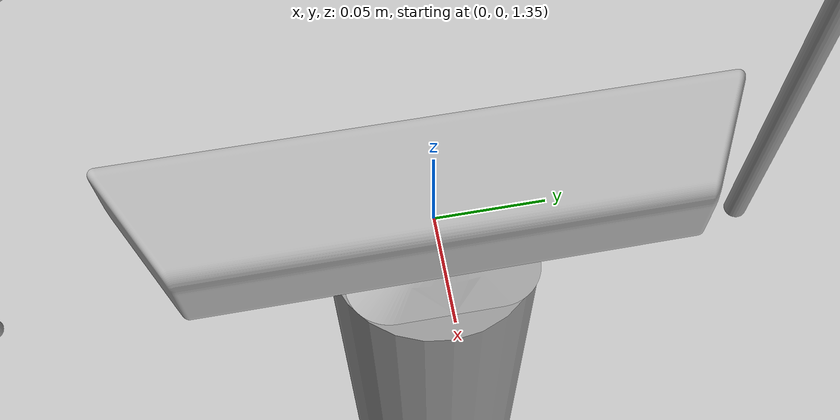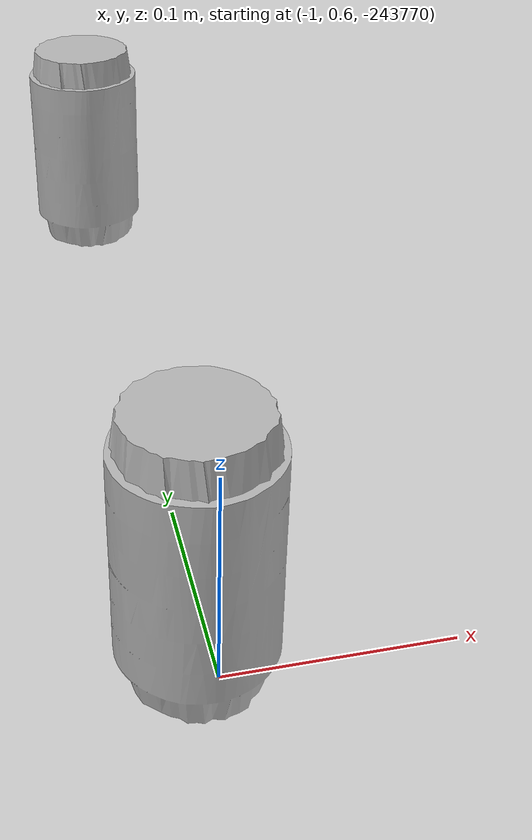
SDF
<sdf version="1.7">
 <world name="default">
  <light name="sun" type="directional">
   <pose>0 0 10 0 -0 0</pose>
   <diffuse>0.8 0.8 0.8 1</diffuse>
   <specular>0.2 0.2 0.2 1</specular>
   <attenuation>
    <range>1000</range>
    <constant>0.9</constant>
    <linear>0.01</linear>
    <quadratic>0.001</quadratic>
   </attenuation>
   <direction>-0.5 0.1 -0.9</direction>
   <spot><inner_angle>0</inner_angle><outer_angle>0</outer_angle><falloff>0</falloff></spot>
  </light>
  <gravity>0 0 -9.8</gravity>
  <magnetic_field>6e-06 2.3e-05 -4.2e-05</magnetic_field>
  <atmosphere type="adiabatic"/>
  <physics type="ode">
   <max_step_size>0.001</max_step_size>
   <real_time_factor>1</real_time_factor>
   <real_time_update_rate>1000</real_time_update_rate>
  </physics>
  <scene><ambient>0.4 0.4 0.4 1</ambient><background>0.7 0.7 0.7 1</background><shadows>1</shadows></scene>
  <spherical_coordinates>
   <surface_model>EARTH_WGS84</surface_model>
   <latitude_deg>0</latitude_deg>
   <longitude_deg>0</longitude_deg>
   <elevation>0</elevation>
   <heading_deg>0</heading_deg>
  </spherical_coordinates>
  <model name="table_clone">
   <static>1</static>
   <link name="link">
    <collision name="surface">
     <pose>0 0 1 0 -0 0</pose>
     <geometry><box><size>1.5 0.8 0.03</size></box></geometry>
     <surface><friction><ode><mu>0.6</mu><mu2>0.6</mu2></ode></friction></surface>
    </collision>
    <visual name="visual1">
     <pose>0 0 1 0 -0 0</pose>
     <geometry><box><size>1.5 0.8 0.03</size></box></geometry>
     <material>
      <script><uri>file://media/materials/scripts/gazebo.material</uri><name>Gazebo/Wood</name></script>
     </material>
    </visual>
    <collision name="front_left_leg">
     <pose>0.68 0.38 0.5 0 -0 0</pose>
     <geometry><cylinder><radius>0.02</radius><length>1</length></cylinder></geometry>
    </collision>
    <visual name="front_left_leg">
     <pose>0.68 0.38 0.5 0 -0 0</pose>
     <geometry><cylinder><radius>0.02</radius><length>1</length></cylinder></geometry>
     <material>
      <script><uri>file://media/materials/scripts/gazebo.material</uri><name>Gazebo/Grey</name></script>
     </material>
    </visual>
    <collision name="front_right_leg">
     <pose>0.68 -0.38 0.5 0 -0 0</pose>
     <geometry><cylinder><radius>0.02</radius><length>1</length></cylinder></geometry>
    </collision>
    <visual name="front_right_leg">
     <pose>0.68 -0.38 0.5 0 -0 0</pose>
     <geometry><cylinder><radius>0.02</radius><length>1</length></cylinder></geometry>
     <material>
      <script><uri>file://media/materials/scripts/gazebo.material</uri><name>Gazebo/Grey</name></script>
     </material>
    </visual>
    <collision name="back_right_leg">
     <pose>-0.68 -0.38 0.5 0 -0 0</pose>
     <geometry><cylinder><radius>0.02</radius><length>1</length></cylinder></geometry>
    </collision>
    <visual name="back_right_leg">
     <pose>-0.68 -0.38 0.5 0 -0 0</pose>
     <geometry><cylinder><radius>0.02</radius><length>1</length></cylinder></geometry>
     <material>
      <script><uri>file://media/materials/scripts/gazebo.material</uri><name>Gazebo/Grey</name></script>
     </material>
    </visual>
    <collision name="back_left_leg">
     <pose>-0.68 0.38 0.5 0 -0 0</pose>
     <geometry><cylinder><radius>0.02</radius><length>1</length></cylinder></geometry>
    </collision>
    <visual name="back_left_leg">
     <pose>-0.68 0.38 0.5 0 -0 0</pose>
     <geometry><cylinder><radius>0.02</radius><length>1</length></cylinder></geometry>
     <material>
      <script><uri>file://media/materials/scripts/gazebo.material</uri><name>Gazebo/Grey</name></script>
     </material>
    </visual>
   </link>
   <pose>-1 0 0 0 0 -1.57</pose>
  </model>
  <model name="coke_can">
   <link name="link">
    <inertial>
     <pose>0 0 0.06 0 -0 0</pose>
     <mass>0.39</mass>
     <inertia>
      <ixx>0.00055575</ixx>
      <ixy>0</ixy>
      <ixz>0</ixz>
      <iyy>0.00055575</iyy>
      <iyz>0</iyz>
      <izz>0.0001755</izz>
     </inertia>
    </inertial>
    <collision name="collision">
     <pose>0.003937 0.004724 -0.18 0 -0 0</pose>
     <geometry><mesh><uri>model://coke_can/meshes/coke_can.dae</uri></mesh></geometry>
     <surface>
      <friction><ode><mu>1</mu><mu2>1</mu2></ode></friction>
      <contact><ode><kp>1e+07</kp><kd>1</kd><min_depth>0.001</min_depth><max_vel>0.1</max_vel></ode></contact>
     </surface>
    </collision>
    <visual name="visual">
     <pose>0.003937 0.004724 -0.18 0 -0 0</pose>
     <geometry><mesh><uri>model://coke_can/meshes/coke_can.dae</uri></mesh></geometry>
    </visual>
   </link>
   <pose>-1.00646 0.608427 -243770 0 -0 0</pose>
  </model>
  <model name="coke_can_clone">
   <link name="link">
    <inertial>
     <pose>0 0 0.06 0 -0 0</pose>
     <mass>0.39</mass>
     <inertia>
      <ixx>0.00055575</ixx>
      <ixy>0</ixy>
      <ixz>0</ixz>
      <iyy>0.00055575</iyy>
      <iyz>0</iyz>
      <izz>0.0001755</izz>
     </inertia>
    </inertial>
    <collision name="collision">
     <pose>0.003937 0.004724 -0.18 0 -0 0</pose>
     <geometry><mesh><uri>model://coke_can/meshes/coke_can.dae</uri></mesh></geometry>
     <surface>
      <friction><ode><mu>1</mu><mu2>1</mu2></ode></friction>
      <contact><ode><kp>1e+07</kp><kd>1</kd><min_depth>0.001</min_depth><max_vel>0.1</max_vel></ode></contact>
     </surface>
    </collision>
    <visual name="visual">
     <pose>0.003937 0.004724 -0.18 0 -0 0</pose>
     <geometry><mesh><uri>model://coke_can/meshes/coke_can.dae</uri></mesh></geometry>
    </visual>
   </link>
   <pose>-1 1 -243770 0 -0 0</pose>
  </model>
  <model name="coke_can_clone_0">
   <link name="link">
    <inertial>
     <pose>0 0 0.06 0 -0 0</pose>
     <mass>0.39</mass>
     <inertia>
      <ixx>0.00055575</ixx>
      <ixy>0</ixy>
      <ixz>0</ixz>
      <iyy>0.00055575</iyy>
      <iyz>0</iyz>
      <izz>0.0001755</izz>
     </inertia>
    </inertial>
    <collision name="collision">
     <pose>0.003937 0.004724 -0.18 0 -0 0</pose>
     <geometry><mesh><uri>model://coke_can/meshes/coke_can.dae</uri></mesh></geometry>
     <surface>
      <friction><ode><mu>1</mu><mu2>1</mu2></ode></friction>
      <contact><ode><kp>1e+07</kp><kd>1</kd><min_depth>0.001</min_depth><max_vel>0.1</max_vel></ode></contact>
     </surface>
    </collision>
    <visual name="visual">
     <pose>0.003937 0.004724 -0.18 0 -0 0</pose>
     <geometry><mesh><uri>model://coke_can/meshes/coke_can.dae</uri></mesh></geometry>
    </visual>
   </link>
   <pose>-1.00428 -0.358893 1.01226 -0.006127 -0.036986 -0.000941</pose>
  </model>
  <model name="kinect">
   <static>1</static>
   <pose>-0.025 0 1.38 0 -0 3.1415</pose>
   <link name="kinect_link">
    <inertial>
     <mass>0.1</mass>
     <inertia><ixx>1</ixx><ixy>0</ixy><ixz>0</ixz><iyy>1</iyy><iyz>0</iyz><izz>1</izz></inertia>
    </inertial>
    <collision name="collision"><geometry><box><size>0.073 0.276 0.072</size></box></geometry></collision>
    <visual name="visual"><geometry><mesh><uri>model://kinect/meshes/kinect.dae</uri></mesh></geometry></visual>
    <sensor name="depth_camera" type="depth">
     <always_on>1</always_on>
     <update_rate>30</update_rate>
     <visualize>1</visualize>
     <camera>
      <horizontal_fov>1.047</horizontal_fov>
      <image><width>640</width><height>480</height><format>R8G8B8</format></image>
      <clip><near>0.1</near><far>5</far></clip>
     </camera>
     <plugin name="kinect_camera_plugin" filename="libgazebo_ros_openni_kinect.so">
      <cameraName>kinect</cameraName>
      <imageTopicName>kinect/image_raw</imageTopicName>
      <cameraInfoTopicName>kinect/camera_info</cameraInfoTopicName>
      <frameName>kinect_rgb_optical_frame</frameName>
      <updateRate>30.0</updateRate>
     </plugin>
    </sensor>
   </link>
  </model>
  <model name="suporte_camera">
   <link name="link">
    <inertial>
     <mass>1</mass>
     <inertia><ixx>0.145833</ixx><ixy>0</ixy><ixz>0</ixz><iyy>0.145833</iyy><iyz>0</iyz><izz>0.125</izz></inertia>
    </inertial>
    <pose>-0 -0.544675 0 0 -0 0</pose>
    <gravity>0</gravity>
    <visual name="visual">
     <geometry><cylinder><radius>0.05</radius><length>1.3</length></cylinder></geometry>
     <material>
      <script><name>Gazebo/Grey</name><uri>file://media/materials/scripts/gazebo.material</uri></script>
      <shader type="pixel"><normal_map>__default__</normal_map></shader>
      <ambient>0.3 0.3 0.3 1</ambient>
      <diffuse>0.7 0.7 0.7 1</diffuse>
      <specular>0.01 0.01 0.01 1</specular>
      <emissive>0 0 0 1</emissive>
     </material>
    </visual>
    <collision name="collision">
     <geometry><cylinder><radius>0.05</radius><length>1.3</length></cylinder></geometry>
     <surface>
      <friction>
       <ode><mu>1</mu><mu2>1</mu2><fdir1>0 0 0</fdir1><slip1>0</slip1><slip2>0</slip2></ode>
       <torsional>
        <coefficient>1</coefficient>
        <patch_radius>0</patch_radius>
        <surface_radius>0</surface_radius>
        <use_patch_radius>1</use_patch_radius>
        <ode><slip>0</slip></ode>
       </torsional>
      </friction>
      <bounce><restitution_coefficient>0</restitution_coefficient><threshold>1e+06</threshold></bounce>
      <contact>
       <collide_without_contact>0</collide_without_contact>
       <collide_without_contact_bitmask>1</collide_without_contact_bitmask>
       <collide_bitmask>1</collide_bitmask>
       <ode>
        <soft_cfm>0</soft_cfm>
        <soft_erp>0.2</soft_erp>
        <kp>1e+13</kp>
        <kd>1</kd>
        <max_vel>0.01</max_vel>
        <min_depth>0</min_depth>
       </ode>
       <bullet>
        <split_impulse>1</split_impulse>
        <split_impulse_penetration_threshold>-0.01</split_impulse_penetration_threshold>
        <soft_cfm>0</soft_cfm>
        <soft_erp>0.2</soft_erp>
        <kp>1e+13</kp>
        <kd>1</kd>
       </bullet>
      </contact>
     </surface>
    </collision>
   </link>
   <static>1</static>
   <pose>0 0.544675 0.68 0 -0 0</pose>
  </model>
 </world>
</sdf>
